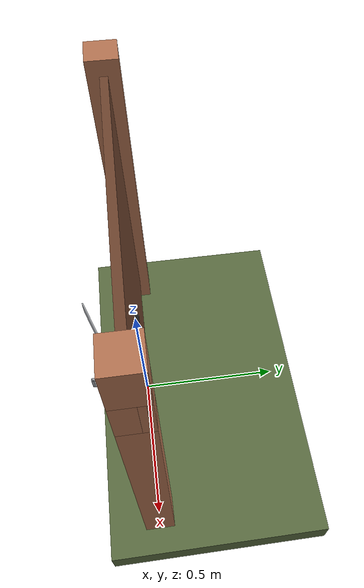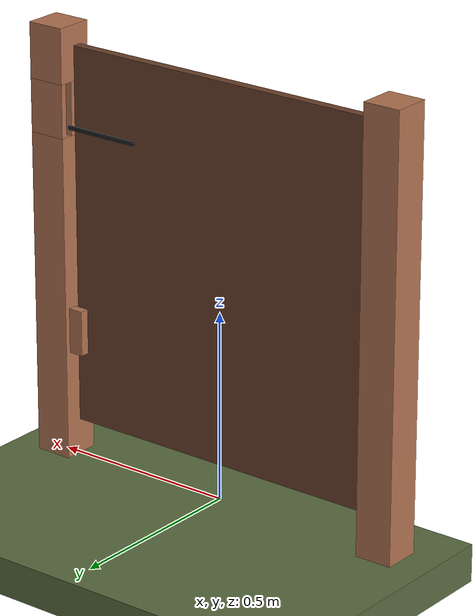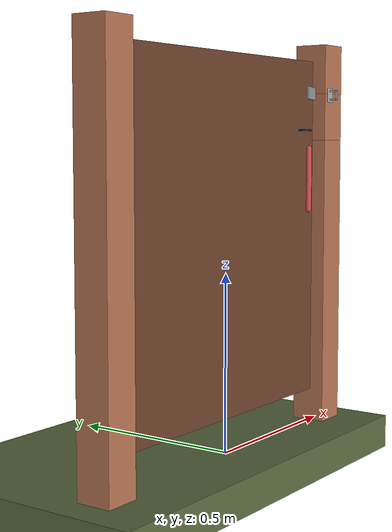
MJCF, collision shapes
<?xml version="1.0" ?>
<mujoco model="db0851_gate_swing_minimal">
  <compiler angle="radian" meshdir="../../hardware" texturedir="../../textures" autolimits="true" inertiafromgeom="false"/>
  <option timestep="0.002" integrator="implicitfast" cone="elliptic" impratio="10" noslip_iterations="3">
    <flag multiccd="enable"/>
  </option>
  <size memory="16M"/>
  <default>
    <geom condim="4" solref="0.005 1" solimp="0.95 0.99 0.001"/>
    <joint solreflimit="0.005 1" solimplimit="0.95 0.99 0.001"/>
    <tendon solreflimit="0.005 1"/>
    <equality solref="0.002 1"/>
  </default>
  <visual>
    <headlight ambient="0.4 0.4 0.4" diffuse="0.7 0.7 0.7" specular="0.2 0.2 0.2"/>
    <quality shadowsize="4096"/>
    <map znear="0.01" zfar="60"/>
  </visual>
  <asset>
    <mesh name="thumb_latch_0073ea78ed" file="thumb_latch_0073ea78ed.obj"/>
    <material name="mat_floor" rgba="0.35 0.42 0.25 1" specular="0.2" shininess="0.15" reflectance="0"/>
    <material name="mat_wall" rgba="0.78 0.76 0.7 1" specular="0.2" shininess="0.1" reflectance="0"/>
    <material name="mat_leaf" rgba="0.423 0.258 0.174 1" specular="0.2" shininess="0.4" reflectance="0"/>
    <material name="mat_leaf_brace" rgba="0.38 0.232 0.156 1" specular="0.2" shininess="0.2" reflectance="0"/>
    <material name="mat_hinge" rgba="0.45 0.3 0.22 1" specular="0.5" shininess="0.1" reflectance="0.2"/>
    <material name="mat_op_wrought_iron" rgba="0.08 0.08 0.09 1" specular="0.56" shininess="0.25" reflectance="0.24"/>
    <material name="mat_op_steel_galvanized" rgba="0.65 0.66 0.68 1" specular="0.74" shininess="0.5" reflectance="0.36"/>
    <material name="mat_padlock" rgba="0.85 0.66 0.3 1" specular="0.8" shininess="0.75" reflectance="0.4"/>
    <material name="mat_frame" rgba="0.7 0.45 0.32 1" specular="0.2" shininess="0.4" reflectance="0"/>
    <material name="mat_fence" rgba="0.7 0.45 0.32 1" specular="0.2" shininess="0.4" reflectance="0"/>
    <texture name="skybox" type="skybox" builtin="gradient" rgb1="0.6 0.7 0.85" rgb2="0.9 0.92 0.95" width="256" height="256"/>
  </asset>
  <worldbody>
    <light name="sun" pos="1.5 -2.5 4" dir="-0.3 0.5 -0.8" directional="true" diffuse="0.8 0.8 0.8" specular="0.3 0.3 0.3" castshadow="true"/>
    <light name="fill" pos="-1.5 2.5 3" dir="0.3 -0.5 -0.7" directional="true" diffuse="0.35 0.35 0.4" castshadow="false"/>
    <camera name="robot_view" pos="0 -1.875 1.035" xyaxes="1 0 0 0 0.26963 0.962964" fovy="52"/>
    <camera name="far_view" pos="0 1.875 1.035" xyaxes="-1 0 0 0 -0.26963 0.962964" fovy="52"/>
    <camera name="iso" pos="1.425 -1.575 1.335" xyaxes="0.741536 0.670913 0 -0.242917 0.268487 0.932151" fovy="46"/>
    <camera name="detail_handle" pos="0.547 -0.8475 1.03" xyaxes="0.97561 0.219512 0 -0.070934 0.315262 0.94635" fovy="38"/>
    <geom name="floor" type="box" size="6 6 0.05" pos="0 0 -0.05" material="mat_floor" group="0" contype="1" conaffinity="1" friction="0.8 0.005 0.0001" density="2400"/>
    <geom name="leaf_staple_leg_n" type="box" size="0.003 0.0025 0.013" pos="0.484 -0.063 0.9875" quat="0.707107 0.707107 0 0" material="mat_op_steel_galvanized" group="0" contype="1" conaffinity="1" friction="0.6 0.005 0.0001" density="7800"/>
    <geom name="leaf_staple_leg_p" type="box" size="0.003 0.0025 0.013" pos="0.484 -0.063 1.0125" quat="0.707107 0.707107 0 0" material="mat_op_steel_galvanized" group="0" contype="1" conaffinity="1" friction="0.6 0.005 0.0001" density="7800"/>
    <geom name="leaf_staple_bridge" type="box" size="0.003 0.015 0.0025" pos="0.484 -0.0735 1" quat="0.707107 0.707107 0 0" material="mat_op_steel_galvanized" group="0" contype="1" conaffinity="1" friction="0.6 0.005 0.0001" density="7800"/>
    <geom name="leaf_staple_base" type="box" size="0.016 0.021 0.001" pos="0.484 -0.051 1" quat="0.707107 0.707107 0 0" material="mat_op_steel_galvanized" group="1" contype="0" conaffinity="0" density="7800"/>
    <geom name="post_hinge" type="box" size="0.05 0.05 0.575" pos="-0.506 0 0.575" material="mat_frame" group="0" contype="1" conaffinity="1" friction="0.6 0.005 0.0001" density="350"/>
    <geom name="post_935_wall_n" type="box" size="0.05 0.00775 0.07" pos="0.506 0.04225 0.935" material="mat_frame" group="0" contype="1" conaffinity="1" friction="0.6 0.005 0.0001" density="350"/>
    <geom name="post_935_wall_p" type="box" size="0.05 0.03225 0.07" pos="0.506 -0.01775 0.935" material="mat_frame" group="0" contype="1" conaffinity="1" friction="0.6 0.005 0.0001" density="350"/>
    <geom name="post_935_back" type="box" size="0.04 0.01 0.07" pos="0.516 0.0245 0.935" material="mat_frame" group="0" contype="1" conaffinity="1" friction="0.6 0.005 0.0001" density="350"/>
    <geom name="post_latch_0" type="box" size="0.05 0.05 0.4325" pos="0.506 0 0.4325" material="mat_frame" group="0" contype="1" conaffinity="1" friction="0.6 0.005 0.0001" density="350"/>
    <geom name="post_latch_1" type="box" size="0.05 0.05 0.0725" pos="0.506 0 1.0775" material="mat_frame" group="0" contype="1" conaffinity="1" friction="0.6 0.005 0.0001" density="350"/>
    <geom name="gate_stop" type="box" size="0.02 0.012 0.06" pos="0.436 0.0245 0.35" material="mat_frame" group="0" contype="1" conaffinity="1" friction="0.6 0.005 0.0001" density="350"/>
    <site name="approach_point" pos="0 -1.5 0" quat="1 0 0 0" size="0.05" rgba="0.2 0.9 0.2 0.5" group="4"/>
    <site name="goal_point" pos="0 1.5 0" quat="1 0 0 0" size="0.05" rgba="0.2 0.9 0.2 0.5" group="4"/>
    <site name="door_plane_center" pos="0 0 0.51" quat="1 0 0 0" size="0.02" rgba="0.2 0.9 0.2 0.5" group="4"/>
    <body name="leaf" pos="-0.456 0 0">
      <inertial pos="0.487077 -0.00298 0.613815" mass="9.310208" quat="0.6123 -0.614349 -0.346945 -0.356781" diaginertia="0.653348022 0.752611746 1.403333912"/>
      <joint name="leaf_hinge" type="hinge" axis="0 0 -1" pos="0.003 -0.05 0" limited="true" range="0 1.919862" damping="1.118492" frictionloss="1.872388" stiffness="5" springref="-0.8" armature="0.02"/>
      <geom name="leaf_slab" type="box" size="0.45 0.0125 0.5" pos="0.453 0 0.6" material="mat_leaf" group="0" contype="1" conaffinity="1" friction="0.35 0.005 0.0001" density="1"/>
      <geom name="leaf_suffolk_grip" type="mesh" mesh="thumb_latch_0073ea78ed" pos="0.823 -0.0125 0.75" quat="0.707107 0.707107 0 0" material="mat_op_wrought_iron" group="1" contype="0" conaffinity="0" density="7000"/>
      <geom name="leaf_suffolk_grip_col" type="capsule" size="0.008 0.09" pos="0.823 -0.0475 0.75" material="mat_op_wrought_iron" group="3" contype="1" conaffinity="1" rgba="0.8 0.3 0.3 0.25" friction="0.7 0.01 0.0001" density="7000"/>
      <site name="leaf_grip_n" pos="0.823 -0.0475 0.75" quat="1 0 0 0" size="0.012" rgba="0.2 0.9 0.2 0.5" group="4"/>
      <site name="leaf_edge_mid" pos="0.903 0 0.5" quat="1 0 0 0" size="0.02" rgba="0.2 0.9 0.2 0.5" group="4"/>
      <body name="leaf_thumb" pos="0.823 -0.0125 0.895">
        <inertial pos="0 -0.02 0" mass="0.03528" quat="1 0 0 0" diaginertia="0.000002411 0.000002752 0.000004951"/>
        <joint name="leaf_thumb_hinge" type="hinge" axis="1 0 0" limited="true" range="0 0.3" damping="0.155195" frictionloss="0.032" stiffness="0.6" springref="-0.5" armature="0.01"/>
        <geom name="leaf_thumb_geom" type="box" size="0.015 0.014 0.003" pos="0 -0.02 0" material="mat_op_wrought_iron" group="0" contype="1" conaffinity="1" friction="0.6 0.005 0.0001" density="7000"/>
        <site name="leaf_thumb_push" pos="0 -0.024 0.005" quat="1 0 0 0" size="0.01" rgba="0.2 0.9 0.2 0.5" group="4"/>
      </body>
      <body name="leaf_latch_bar" pos="0.703 0.0245 0.89">
        <inertial pos="0.106 0 0" mass="0.25" quat="0 0 0.707107 0.707107" diaginertia="0.000004465 0.000904065 0.000904065"/>
        <joint name="leaf_latch_bar_hinge" type="hinge" axis="0 -1 0" limited="true" range="0 0.6" damping="0.01" frictionloss="0.01" armature="0.005"/>
        <geom name="leaf_latch_bar_geom" type="capsule" size="0.006 0.1" pos="0.106 0 0" quat="0.707107 0 0.707107 0" material="mat_op_wrought_iron" group="0" contype="1" conaffinity="1" friction="0.6 0.005 0.0001" density="7850"/>
      </body>
      <body name="leaf_hasp" pos="0.848 -0.054 1">
        <inertial pos="-0.054209 -0.017681 0" mass="0.093366" quat="0.696818 -0.696818 -0.120185 0.120185" diaginertia="0.000009601 0.000101185 0.000110646"/>
        <joint name="leaf_hasp_hinge" type="hinge" axis="0 0 -1" limited="true" range="0 2.9" damping="0.02" frictionloss="0.05" armature="0.005" ref="2.8"/>
        <geom name="leaf_hasp_strap" type="box" size="0.057 0.0175 0.0015" pos="-0.054209 -0.017681 0" quat="0.120185 0.120185 -0.696818 -0.696818" material="mat_op_steel_galvanized" group="0" contype="1" conaffinity="1" friction="0.6 0.005 0.0001" density="7800"/>
        <site name="leaf_hasp_grip" pos="-0.091919 -0.022067 0" quat="0.169967 0 0 -0.98545" size="0.01" rgba="0.2 0.9 0.2 0.5" group="4"/>
      </body>
    </body>
  </worldbody>
  <equality>
    <joint name="leaf_thumb_couple" joint1="leaf_latch_bar_hinge" joint2="leaf_thumb_hinge" polycoef="0 2 0 0 0" active="true"/>
  </equality>
  <sensor>
    <jointpos name="leaf_hinge_pos" joint="leaf_hinge"/>
    <jointvel name="leaf_hinge_vel" joint="leaf_hinge"/>
    <jointpos name="leaf_thumb_hinge_pos" joint="leaf_thumb_hinge"/>
    <jointvel name="leaf_thumb_hinge_vel" joint="leaf_thumb_hinge"/>
    <jointpos name="leaf_latch_bar_hinge_pos" joint="leaf_latch_bar_hinge"/>
    <jointvel name="leaf_latch_bar_hinge_vel" joint="leaf_latch_bar_hinge"/>
    <jointpos name="leaf_hasp_hinge_pos" joint="leaf_hasp_hinge"/>
    <jointvel name="leaf_hasp_hinge_vel" joint="leaf_hasp_hinge"/>
  </sensor>
</mujoco>
